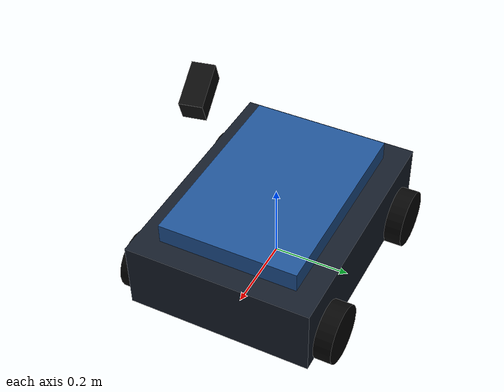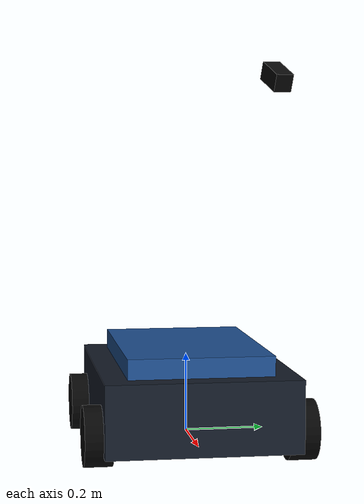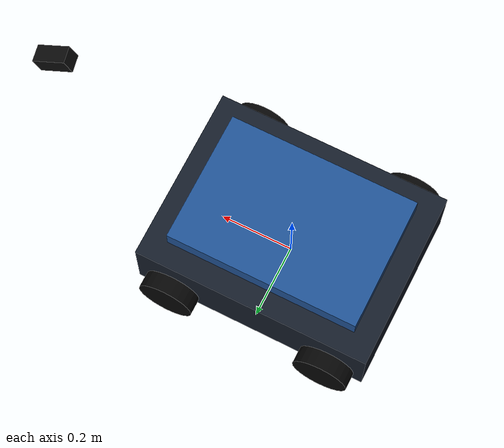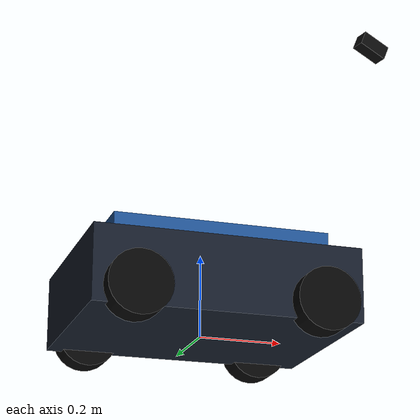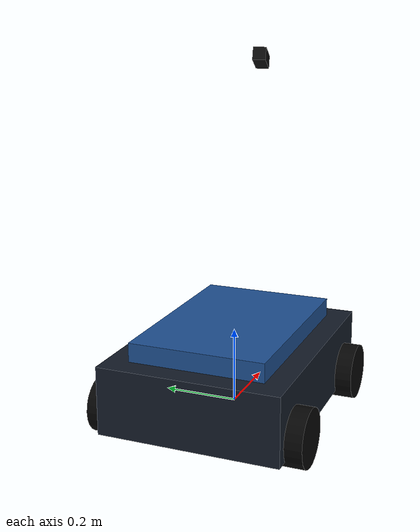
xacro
<?xml version="1.0"?>
<robot xmlns:xacro="http://www.ros.org/wiki/xacro" name="physical_ai_mobile_manipulator_proxy">
  <xacro:property name="base_length" value="0.64"/>
  <xacro:property name="base_width" value="0.48"/>
  <xacro:property name="base_height" value="0.18"/>
  <xacro:property name="wheel_radius" value="0.075"/>
  <xacro:property name="wheel_width" value="0.07"/>

  <link name="base_link">
    <visual>
      <origin xyz="0 0 0.09" rpy="0 0 0"/>
      <geometry>
        <box size="${base_length} ${base_width} ${base_height}"/>
      </geometry>
      <material name="dark_base">
        <color rgba="0.08 0.11 0.16 1.0"/>
      </material>
    </visual>
    <collision>
      <origin xyz="0 0 0.09" rpy="0 0 0"/>
      <geometry>
        <box size="${base_length} ${base_width} ${base_height}"/>
      </geometry>
    </collision>
    <inertial>
      <origin xyz="0 0 0.09" rpy="0 0 0"/>
      <mass value="8.0"/>
      <inertia ixx="0.22" ixy="0.0" ixz="0.0" iyy="0.32" iyz="0.0" izz="0.42"/>
    </inertial>
  </link>

  <link name="top_plate">
    <visual>
      <origin xyz="0 0 0" rpy="0 0 0"/>
      <geometry>
        <box size="0.52 0.36 0.05"/>
      </geometry>
      <material name="blue_plate">
        <color rgba="0.12 0.32 0.58 1.0"/>
      </material>
    </visual>
  </link>

  <joint name="top_plate_fixed" type="fixed">
    <parent link="base_link"/>
    <child link="top_plate"/>
    <origin xyz="0 0 0.205" rpy="0 0 0"/>
  </joint>

  <link name="wrist_camera_link">
    <visual>
      <origin xyz="0 0 0" rpy="0 0 0"/>
      <geometry>
        <box size="0.08 0.04 0.04"/>
      </geometry>
      <material name="camera_black">
        <color rgba="0.04 0.04 0.04 1.0"/>
      </material>
    </visual>
  </link>

  <joint name="wrist_camera_fixed" type="fixed">
    <parent link="top_plate"/>
    <child link="wrist_camera_link"/>
    <origin xyz="0.52 0.12 0.68" rpy="0 0.4 0.2"/>
  </joint>

  <link name="front_left_wheel">
    <visual>
      <origin xyz="0 0 0" rpy="1.57079632679 0 0"/>
      <geometry>
        <cylinder radius="${wheel_radius}" length="${wheel_width}"/>
      </geometry>
      <material name="wheel_black">
        <color rgba="0.02 0.02 0.02 1.0"/>
      </material>
    </visual>
  </link>

  <joint name="front_left_wheel_joint" type="continuous">
    <parent link="base_link"/>
    <child link="front_left_wheel"/>
    <origin xyz="0.22 0.25 0.04" rpy="0 0 0"/>
    <axis xyz="0 1 0"/>
  </joint>

  <link name="front_right_wheel">
    <visual>
      <origin xyz="0 0 0" rpy="1.57079632679 0 0"/>
      <geometry>
        <cylinder radius="${wheel_radius}" length="${wheel_width}"/>
      </geometry>
      <material name="wheel_black"/>
    </visual>
  </link>

  <joint name="front_right_wheel_joint" type="continuous">
    <parent link="base_link"/>
    <child link="front_right_wheel"/>
    <origin xyz="0.22 -0.25 0.04" rpy="0 0 0"/>
    <axis xyz="0 1 0"/>
  </joint>

  <link name="rear_left_wheel">
    <visual>
      <origin xyz="0 0 0" rpy="1.57079632679 0 0"/>
      <geometry>
        <cylinder radius="${wheel_radius}" length="${wheel_width}"/>
      </geometry>
      <material name="wheel_black"/>
    </visual>
  </link>

  <joint name="rear_left_wheel_joint" type="continuous">
    <parent link="base_link"/>
    <child link="rear_left_wheel"/>
    <origin xyz="-0.22 0.25 0.04" rpy="0 0 0"/>
    <axis xyz="0 1 0"/>
  </joint>

  <link name="rear_right_wheel">
    <visual>
      <origin xyz="0 0 0" rpy="1.57079632679 0 0"/>
      <geometry>
        <cylinder radius="${wheel_radius}" length="${wheel_width}"/>
      </geometry>
      <material name="wheel_black"/>
    </visual>
  </link>

  <joint name="rear_right_wheel_joint" type="continuous">
    <parent link="base_link"/>
    <child link="rear_right_wheel"/>
    <origin xyz="-0.22 -0.25 0.04" rpy="0 0 0"/>
    <axis xyz="0 1 0"/>
  </joint>
</robot>
